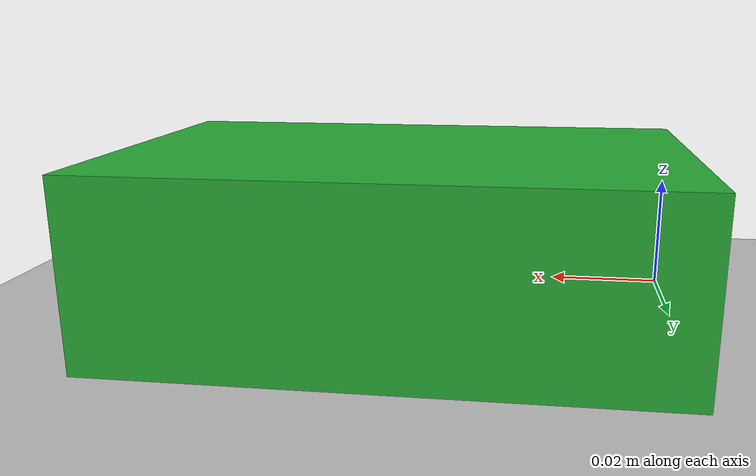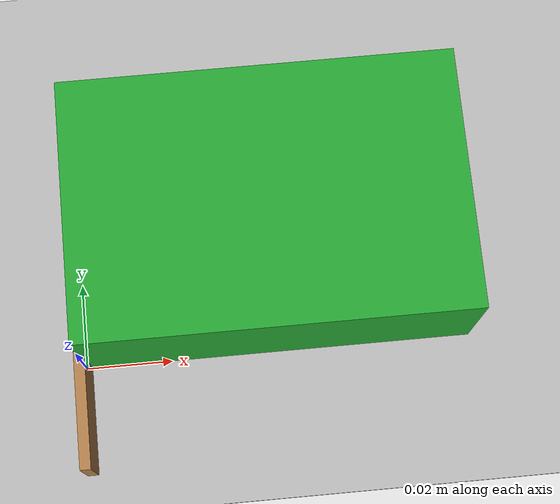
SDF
<sdf version='1.6'>
	<world name='default'>
		<model name='beam'>
			<static>1</static>
			<link name='beam_link'>
				<visual name='visual'>
					<transparency>1</transparency>
					<geometry>
						<mesh>
							<uri>model://beam/meshes/beam.stl</uri>
						</mesh>
					</geometry>
					<material>
						<script>
							<uri>file://media/materials/scripts/gazebo.material</uri>
							<name>Gazebo/Red</name>
						</script>
					</material>
				</visual>
				<gravity>0</gravity>
			</link>
		</model>

		<model name="box">
			<static>1</static>
			<pose>0.045 0.03 0.015 0 0 0</pose>
			<link name="box_link">
				<visual name="visual">
					<transparency>0</transparency>
					<cast_shadows>false</cast_shadows>
					<geometry>
						<box>
							<size>0.09 0.06 0.03</size>
						</box>
					</geometry>
					<material>
						<script>
							<uri>file://media/materials/scripts/gazebo.material</uri>
							<name>Gazebo/Green</name>
						</script>
					</material>
				</visual>
				<gravity>0</gravity>
			</link>
		</model>

		<model name="calibration_pattern">
			<static>1</static>
			<pose>0.153675 0.10245 0 0 0 0</pose>
			<link name="calibration_pattern_link">
				<visual name="visual">
					<transparency>0</transparency>
					<cast_shadows>false</cast_shadows>
					<geometry>
						<box>
							<size>0.37565 0.2732 0.001</size>
						</box>
					</geometry>
					<material>
						<script>
							<uri>model://calibration_pattern/materials/scripts</uri>
							<uri>model://calibration_pattern/materials/textures</uri>
							<name>calibration_pattern</name>
						</script>
					</material>
				</visual>
				<gravity>0</gravity>
			</link>
		</model>

		<model name='camera_projection_mapping'>
			<static>1</static>
			<link name='projector_link'>
				<visual name='projector_link_visual'>
					<geometry>
						<box>
							<size>0.0025 0.05 0.03</size>
						</box>
					</geometry>
					<material>
						<script>
							<name>Gazebo/Wood</name>
							<uri>__default__</uri>
						</script>
					</material>
				</visual>
				<gravity>0</gravity>
				<self_collide>0</self_collide>
				<sensor name='virtual_camera' type='camera'>
					<camera name='projector_head'>
						<horizontal_fov>1.15</horizontal_fov>
						<image>
							<width>1920</width>
							<height>1080</height>
							<format>R8G8B8</format>
						</image>
						<clip>
							<near>0.1</near>
							<far>10.0</far>
						</clip>
						<noise>
							<type>gaussian</type>
							<mean>0</mean>
							<stddev>0</stddev>
						</noise>

						<lens>
							<intrinsics>
								<fx>2211.53735</fx>
								<fy>2222.374786</fy>
								<cx>1025.695628</cx>
								<cy>-58.450707</cy>
								<s>0.0</s>
							</intrinsics>
						</lens>
					</camera>
					<visualize>0</visualize>
					<plugin name='camera_controller' filename='libgazebo_ros_camera.so'>
						<alwaysOn>true</alwaysOn>
						<updateRate>10</updateRate>
						<cameraName>virtual_camera</cameraName>
						<imageTopicName>image_raw</imageTopicName>
						<cameraInfoTopicName>camera_info</cameraInfoTopicName>
						<frameName>camera_link</frameName>

						<focalLengthX>2211.53735</focalLengthX>
						<focalLengthY>2222.374786</focalLengthY>
						<hackBaseline>0</hackBaseline>
						<CxPrime>1025.695628</CxPrime>
						<Cx>1025.695628</Cx>
						<Cy>-58.450707</Cy>

						<distortionK1>-0.001</distortionK1>
						<distortionK2>-0.0025</distortionK2>
						<distortionT1>0.001</distortionT1>
						<distortionT2>0.0025</distortionT2>
						<distortionK3>0</distortionK3>

						<robotNamespace>/</robotNamespace>
					</plugin>
				</sensor>
			</link>
			<static>1</static>
		</model>

		<physics type='ode'>
			<max_step_size>0.1</max_step_size>
			<real_time_factor>1</real_time_factor>
			<real_time_update_rate>10</real_time_update_rate>
			<max_contacts>0</max_contacts>
			<ode>
				<solver>
					<type>quick</type>
					<min_step_size>0.1</min_step_size>
					<iters>1</iters>
				</solver>
			</ode>
		</physics>

		<scene>
			<ambient>1 1 1 1</ambient>
			<background>0 0 0 1</background>
			<shadows>1</shadows>
		</scene>

		<gui fullscreen='0'>
			<camera name='user_camera'>
				<pose>0 0 1 0 1.5707 0</pose>
				<view_controller>orbit</view_controller>
			</camera>
		</gui>
	</world>
</sdf>
